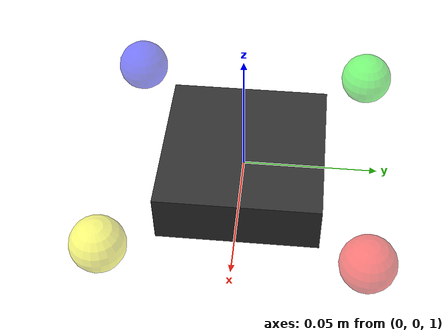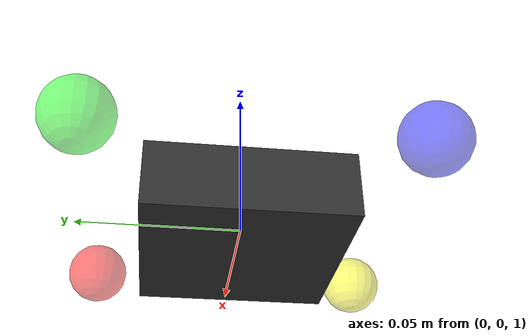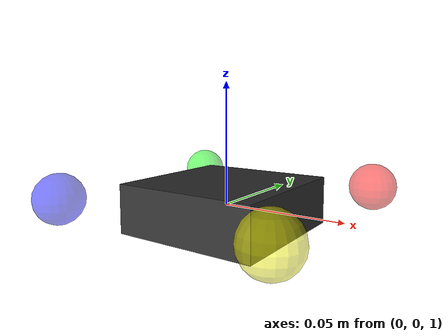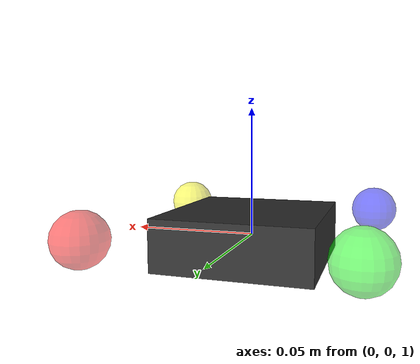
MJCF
<mujoco model="crazyflie_motors">
    <compiler angle="degree" coordinate="local" inertiafromgeom="true"/>
    <option gravity="0 0 -9.81" timestep="0.002" integrator="RK4"/>

    <asset>
        <texture type="skybox" builtin="gradient" rgb1="0.3 0.5 0.7" rgb2="0 0 0" width="512" height="512"/>
        <texture name="grid" type="2d" builtin="checker" rgb1="0.1 0.2 0.3" rgb2="0.2 0.3 0.4" width="512" height="512"/>
        <material name="grid_mat" texture="grid" texrepeat="1 1" texuniform="true" reflectance="0.2"/>
    </asset>

    <worldbody>
        <light pos="0 0 5" dir="0 0 -1" directional="true"/>
        <geom name="floor" type="plane" size="0 0 0.05" material="grid_mat"/>

        <body name="base_link" pos="0 0 1.0">
            <freejoint name="root_joint"/>
            <geom name="core" type="box" size="0.03 0.03 0.01" mass="0.027" rgba="0.2 0.2 0.2 1"/>

            <site name="rotor1" pos="0.046 0.046 0.005" size="0.01" rgba="1 0 0 0.5"/>
            <site name="rotor2" pos="-0.046 0.046 0.005" size="0.01" rgba="0 1 0 0.5"/>
            <site name="rotor3" pos="-0.046 -0.046 0.005" size="0.01" rgba="0 0 1 0.5"/>
            <site name="rotor4" pos="0.046 -0.046 0.005" size="0.01" rgba="1 1 0 0.5"/>
        </body>
    </worldbody>

    <actuator>
        <general name="m1_fl" site="rotor1" gear="0 0 1 0 0 -0.006"/>
        <general name="m2_bl" site="rotor2" gear="0 0 1 0 0  0.006"/>
        <general name="m3_br" site="rotor3" gear="0 0 1 0 0 -0.006"/>
        <general name="m4_fr" site="rotor4" gear="0 0 1 0 0  0.006"/>
    </actuator>
</mujoco>
